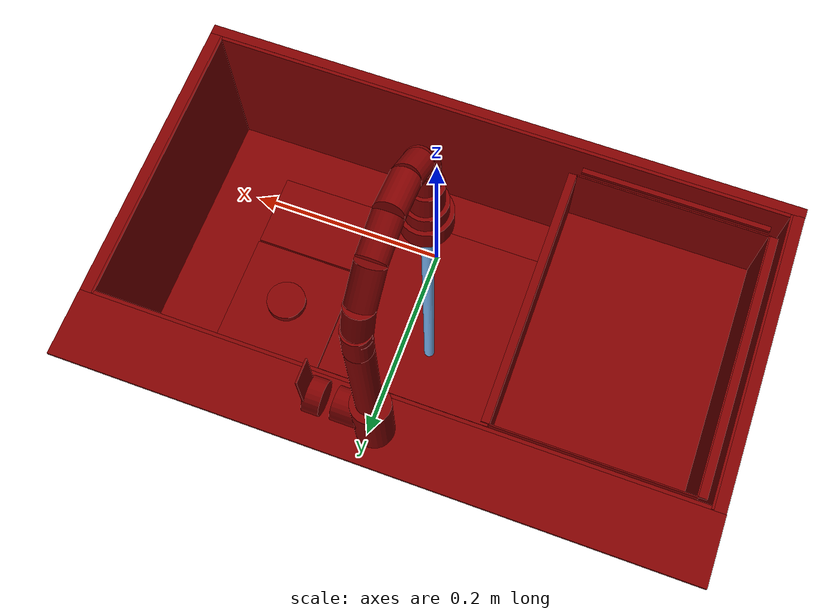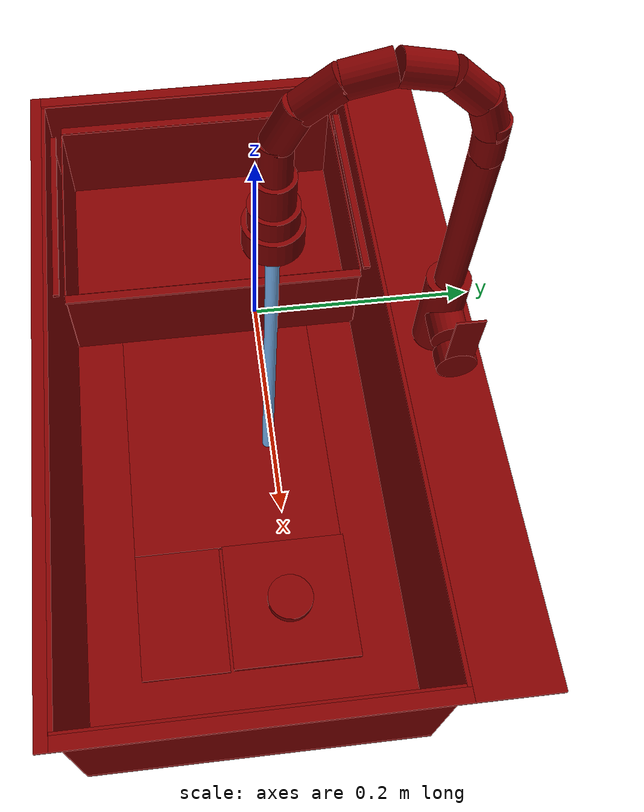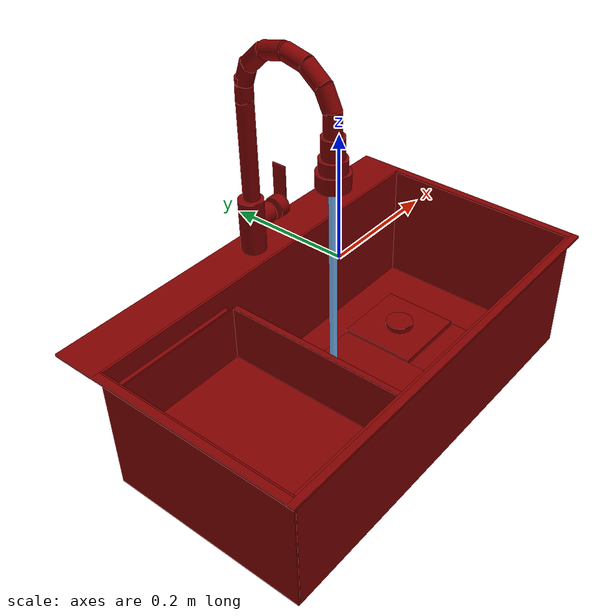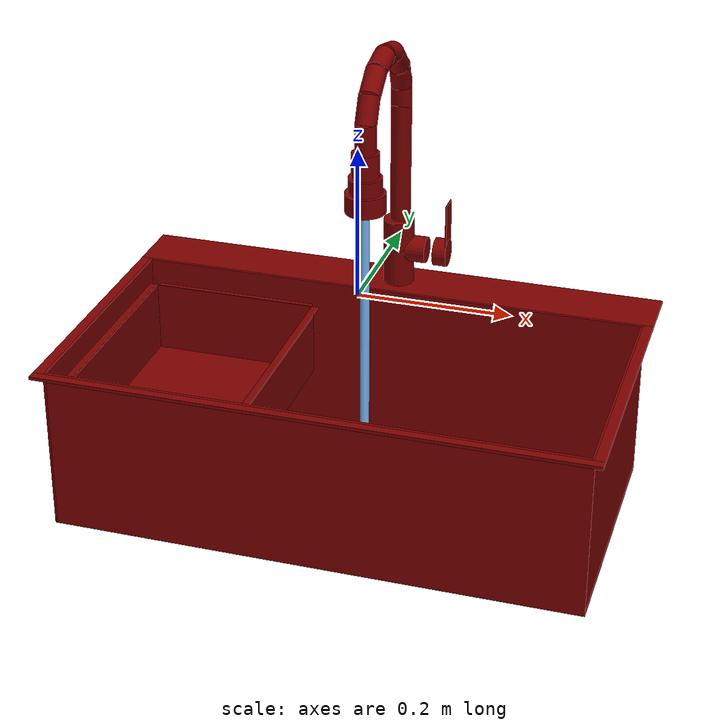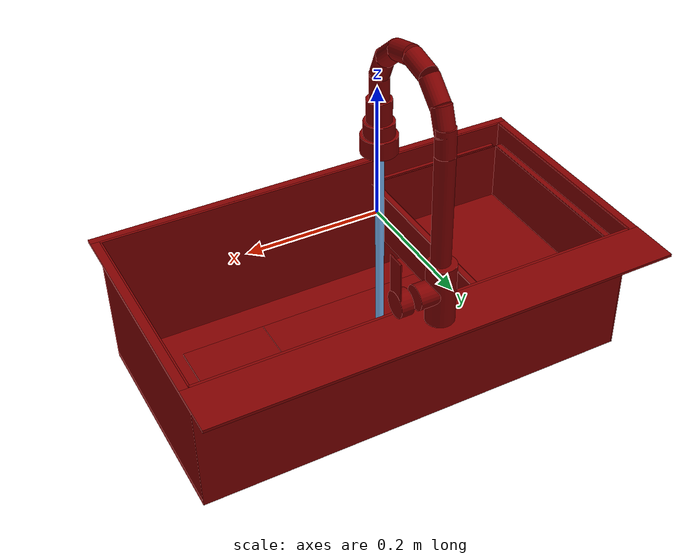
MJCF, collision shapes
<mujoco model="model">
  <compiler angle="radian"/>
  <asset>
    <mesh file="visuals/handle.obj" name="handle_vis"/>
    <mesh file="visuals/Body001.obj" name="Body001_vis"/>
    <mesh file="visuals/Container001.obj" name="Container001_vis"/>
    <mesh file="visuals/Funnel001.obj" name="Funnel001_vis"/>
    <mesh file="visuals/spout.obj" name="spout_vis"/>
    <texture file="visuals/T_BC001.png" name="Body001_material" type="2d"/>
    <material name="Body001_material" rgba="1 1 1 1.0" texture="Body001_material" shininess="0.5" specular="0.3103448502657381"/>
    <texture file="visuals/T_BC001.png" name="handle_material" type="2d"/>
    <material name="handle_material" rgba="1 1 1 1.0" texture="handle_material" shininess="0.5" specular="0.3103448502657381"/>
    <texture file="visuals/T_BC001.png" name="Container001_material" type="2d"/>
    <material name="Container001_material" rgba="1 1 1 1.0" texture="Container001_material" shininess="0.5" specular="0.3103448502657381"/>
    <texture file="visuals/T_BC001.png" name="Funnel001_material" type="2d"/>
    <material name="Funnel001_material" rgba="1 1 1 1.0" texture="Funnel001_material" shininess="0.5" specular="0.3103448502657381"/>
    <texture file="visuals/T_BC001.png" name="spout_material" type="2d"/>
    <material name="spout_material" rgba="1 1 1 1.0" texture="spout_material" shininess="0.5" specular="0.3103448502657381"/>
  </asset>
  <default>
    <default class="visual">
      <geom conaffinity="0" contype="0" group="1" type="mesh"/>
    </default>
    <default class="collision">
      <geom group="0" rgba="0.5 0 0 0.5"/>
    </default>
    <default class="spawn">
      <geom group="0" rgba="1 1 1 0.5" contype="0" conaffinity="0"/>
      <site group="0" rgba="1 1 1 0.5"/>
    </default>
    <default class="region">
      <geom group="1" conaffinity="0" contype="0" rgba="0 1 0 0"/>
    </default>
  </default>
  <worldbody>
    <body>
      <body name="object">
        <geom mesh="Body001_vis" type="mesh" solimp="0.998 0.998 0.001" solref="0.001 1" density="100" friction="0.95 0.3 0.1" class="visual" material="Body001_material"/>
        <geom class="collision" type="box" pos="0.000509 -0.033032 -0.279904" size="0.3494914770126343 0.17464318871498108 0.0037552821449935436" quat="1.0 0.0 0.0 0.0"/>
        <geom class="collision" type="box" pos="-0.347367 -0.033032 -0.172308" size="0.0016155838966369629 0.17464318871498108 0.11041142791509628" quat="1.0 0.0 0.0 0.0"/>
        <geom class="collision" type="box" pos="0.347876 -0.033032 -0.172308" size="0.0021242061629891396 0.17464318871498108 0.11041142791509628" quat="1.0 0.0 0.0 0.0"/>
        <geom class="collision" type="box" pos="0.002124 -0.205984 -0.172308" size="0.3478758931159973 0.0022221729159355164 0.11041142791509628" quat="1.0 0.0 0.0 0.0"/>
        <geom class="collision" type="box" pos="0.002124 0.140128 -0.172308" size="0.3478758931159973 0.0021076053380966187 0.11041142791509628" quat="1.0 0.0 0.0 0.0"/>
        <geom class="collision" type="box" pos="-0.000182 -0.213953 -0.064052" size="0.361817866563797 0.00599999725818634 0.0021690367721021175" quat="1.0 0.0 0.0 0.0"/>
        <geom class="collision" type="box" pos="-0.000182 0.181094 -0.064052" size="0.361817866563797 0.03885887563228607 0.0021690367721021175" quat="1.0 0.0 0.0 0.0"/>
        <geom class="collision" type="box" pos="-0.355089 -0.033154 -0.064052" size="0.006599545478820801 0.17538979649543762 0.0021690367721021175" quat="1.0 0.0 0.0 0.0"/>
        <geom class="collision" type="box" pos="0.355068 -0.033154 -0.064052" size="0.006599545478820801 0.17538979649543762 0.0021690367721021175" quat="1.0 0.0 0.0 0.0"/>
        <geom class="collision" type="cylinder" pos="0.003713 0.178681 -0.016320" size="0.021033236756920815 0.046931710094213486" quat="1.0 0.0 0.0 0.0"/>
        <geom class="collision" type="cylinder" pos="0.019777 0.178681 -0.011541" size="0.01805560290813446 0.02354067750275135" quat="0.7071068286895752 -0.0 0.7071067690849304 0.0"/>
        <geom class="collision" type="box" pos="-0.069552 -0.032936 -0.274526" size="0.19766385853290558 0.11506224423646927 0.003075404791161418" quat="1.0 0.0 0.0 0.0"/>
        <geom class="collision" type="box" pos="0.196885 -0.101485 -0.274526" size="0.06809233129024506 0.04651406407356262 0.003075404791161418" quat="1.0 0.0 0.0 0.0"/>
        <geom class="collision" type="box" pos="-0.221188 -0.201232 -0.098159" size="0.1124766394495964 0.003705710871145129 0.0019172222819179296" quat="1.0 0.0 0.0 0.0"/>
        <geom class="collision" type="box" pos="-0.221202 0.134573 -0.098571" size="0.11257906258106232 0.003705715062096715 0.0019172243773937225" quat="1.0 0.0 0.0 0.0"/>
        <geom class="collision" type="cylinder" pos="0.197320 0.019502 -0.293106" size="0.05640081316232681 0.008983983658254147" quat="1.0 0.0 0.0 0.0"/>
        <body name="handle">
          <joint axis="1.0 0.0 0.0" pos="0.058351 0.178351 -0.011657" limited="true" name="handle_joint_hinge_0" type="hinge" range="-0.7853981633974483 0.7853981633974483" damping="1" frictionloss="1" armature=".01" stiffness="0.05"/>
          <joint axis="0.0 1.0 0.0" pos="0.058351 0.178351 -0.011657" limited="true" name="handle_joint_hinge_1" type="hinge" range="0.0 0.2617993877991494" damping="1" frictionloss="1" armature=".01" stiffness="0.05"/>
          <geom mesh="handle_vis" type="mesh" solimp="0.998 0.998 0.001" solref="0.001 1" density="100" friction="0.95 0.3 0.1" class="visual" material="handle_material"/>
          <geom class="collision" type="cylinder" pos="0.063953 0.178659 -0.011458" size="0.019063150510191917 0.009119819849729538" quat="0.7071068286895752 -0.0 0.7071067690849304 0.0"/>
          <geom class="collision" type="box" pos="0.072127 0.178681 0.031389" size="0.0008838959620334208 0.01316643226891756 0.030219264328479767" quat="1.0 0.0 0.0 0.0"/>
        </body>
        <body name="Container001">
          <joint axis="0.0 0.0 1.0" pos="-0.220141 -0.032524 -0.143806" limited="true" name="Container001_joint" range="0.0 0.1" type="slide" damping="1" frictionloss="1" armature=".01" stiffness="0.05"/>
          <geom mesh="Container001_vis" type="mesh" solimp="0.998 0.998 0.001" solref="0.001 1" density="100" friction="0.95 0.3 0.1" class="visual" material="Container001_material"/>
          <geom class="collision" type="box" pos="-0.099916 -0.032524 -0.094865" size="0.004775255918502808 0.15808671712875366 0.0010909452103078365" quat="1.0 0.0 0.0 0.0"/>
          <geom class="collision" type="box" pos="-0.339694 -0.032524 -0.094865" size="0.004775255918502808 0.15808671712875366 0.0010909452103078365" quat="1.0 0.0 0.0 0.0"/>
          <geom class="collision" type="box" pos="-0.104199 -0.032524 -0.143926" size="0.0012088071089237928 0.15808671712875366 0.04981043562293053" quat="1.0 0.0 0.0 0.0"/>
          <geom class="collision" type="box" pos="-0.334575 -0.032524 -0.143926" size="0.0012088071089237928 0.15808671712875366 0.04981043562293053" quat="1.0 0.0 0.0 0.0"/>
          <geom class="collision" type="box" pos="-0.220128 -0.190587 -0.143926" size="0.11565577983856201 0.0008009698358364403 0.04981043562293053" quat="1.0 0.0 0.0 0.0"/>
          <geom class="collision" type="box" pos="-0.220128 0.126040 -0.143926" size="0.11565577983856201 0.000787236203905195 0.04981043562293053" quat="1.0 0.0 0.0 0.0"/>
          <geom class="collision" type="box" pos="-0.220128 -0.032433 -0.192870" size="0.11565577983856201 0.157339408993721 0.0008923442801460624" quat="1.0 0.0 0.0 0.0"/>
        </body>
        <body name="Funnel001">
          <joint axis="0.0 0.0 1.0" pos="0.196591 0.016370 -0.271811" limited="true" name="Funnel001_joint" range="0.0 0.1" type="slide" damping="1" frictionloss="1" armature=".01" stiffness="0.05"/>
          <geom mesh="Funnel001_vis" type="mesh" solimp="0.998 0.998 0.001" solref="0.001 1" density="100" friction="0.95 0.3 0.1" class="visual" material="Funnel001_material"/>
          <geom class="collision" type="box" pos="0.196591 0.016370 -0.270713" size="0.06788630038499832 0.06788630038499832 0.003278127871453762" quat="1.0 0.0 0.0 0.0"/>
          <geom class="collision" type="cylinder" pos="0.196591 0.016370 -0.260971" size="0.02470032311975956 0.0050818524323403835" quat="1.0 0.0 0.0 0.0"/>
        </body>
        <body name="spout">
          <joint axis="0.0 0.0 1.0" pos="0.005259 0.178006 0.161175" limited="true" name="spout_joint" range="-0.7853981633974483 0.7853981633974483" type="hinge" damping="1" frictionloss="1" armature=".01" stiffness="0.05"/>
          <site type="cylinder" rgba="0.5 0.75 1 1" size="0.00638140132650733 0.1978125274181366" pos="0.004465 0.014884 -0.073173" name="water"/>
          <geom mesh="spout_vis" type="mesh" solimp="0.998 0.998 0.001" solref="0.001 1" density="100" friction="0.95 0.3 0.1" class="visual" material="spout_material"/>
          <geom class="collision" type="cylinder" pos="0.005259 0.178006 0.117398" size="0.013790478929877281 0.08516550064086914" quat="1.0 0.0 0.0 0.0"/>
          <geom class="collision" type="cylinder" pos="0.005259 0.022916 0.243497" size="0.013969795778393745 0.01934167742729187" quat="0.9760962128639221 -0.21733887493610382 -4.825892462003796e-17 -6.7395162937341285e-25"/>
          <geom class="collision" type="cylinder" pos="0.005259 0.014498 0.166325" size="0.018029872328042984 0.025090152397751808" quat="1.0 0.0 0.0 0.0"/>
          <geom class="collision" type="cylinder" pos="0.005259 0.014498 0.124463" size="0.026646068319678307 0.013089129701256752" quat="1.0 0.0 0.0 0.0"/>
          <geom class="collision" type="cylinder" pos="0.005259 0.014498 0.147674" size="0.02208315208554268 0.010847726836800575" quat="1.0 0.0 0.0 0.0"/>
          <geom class="collision" type="cylinder" pos="0.005259 0.014995 0.209928" size="0.013969792984426022 0.019341671839356422" quat="1.0 0.0 0.0 0.0"/>
          <geom class="collision" type="cylinder" pos="0.005259 0.045781 0.270847" size="0.013969795778393745 0.01934167556464672" quat="0.9037017226219177 -0.4281626343727112 -9.507120961039418e-17 -6.2929264566780224e-24"/>
          <geom class="collision" type="cylinder" pos="0.005259 0.077568 0.286333" size="0.013969795778393745 0.01934167556464672" quat="0.7836740016937256 -0.621172308921814 -1.3792795992491368e-16 5.023387752787334e-24"/>
          <geom class="collision" type="cylinder" pos="0.005259 0.116069 0.286288" size="0.013969795778393745 0.01934167556464672" quat="0.6228312253952026 -0.7823562622070312 -1.7371800038727426e-16 -1.4317610465164692e-24"/>
          <geom class="collision" type="cylinder" pos="0.005259 0.149882 0.267959" size="0.013969795778393745 0.01934167556464672" quat="0.3958962559700012 -0.9182952642440796 -2.0390250915360388e-16 -1.938891836250058e-23"/>
          <geom class="collision" type="cylinder" pos="0.005259 0.171143 0.239150" size="0.013969795778393745 0.01934167370200157" quat="0.1707230657339096 -0.9853190779685974 -2.1878479862752313e-16 -7.916989112136349e-24"/>
          <geom class="collision" type="cylinder" pos="0.005259 0.177422 0.213677" size="0.013969795778393745 0.01934167556464672" quat="0.023438289761543274 -0.9997252821922302 -2.219836053179392e-16 -1.694311507929163e-23"/>
        </body>
        <geom class="region" name="reg_main" type="box" pos="0.0 0.0 -0.1818485" size="0.362 0.219953 0.1199535"/>
        <geom class="region" name="reg_basin" type="box" pos="0.1258285 -0.032271999999999995 -0.173168" size="0.2168695 0.169772 0.106532"/>
      </body>
    </body>
  </worldbody>
  <actuator>
    <motor name="handle_joint_hinge_0_actuator" joint="handle_joint_hinge_0" gear="10"/>
    <motor name="handle_joint_hinge_1_actuator" joint="handle_joint_hinge_1" gear="10"/>
    <motor name="Container001_joint_actuator" joint="Container001_joint" gear="50"/>
    <motor name="Funnel001_joint_actuator" joint="Funnel001_joint" gear="10"/>
    <motor name="spout_joint_actuator" joint="spout_joint" gear="10"/>
  </actuator>
</mujoco>
